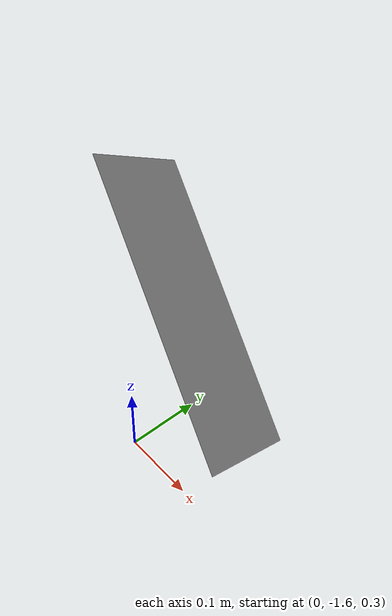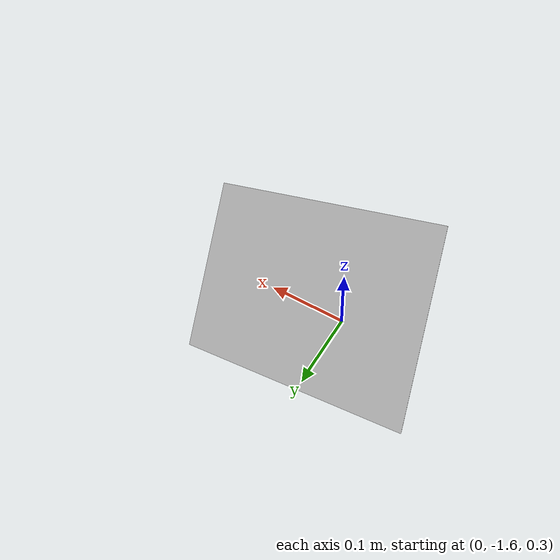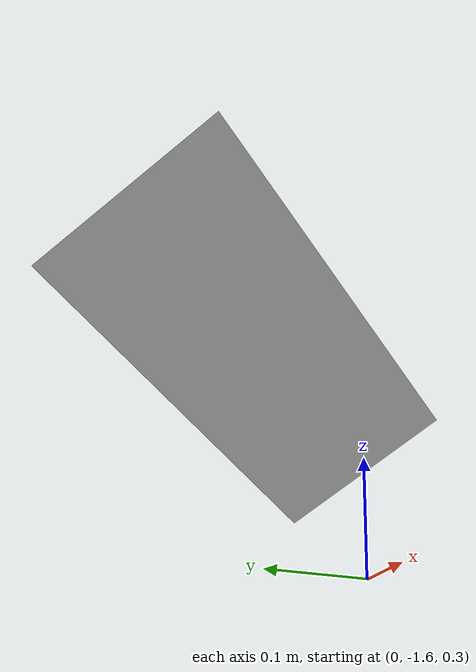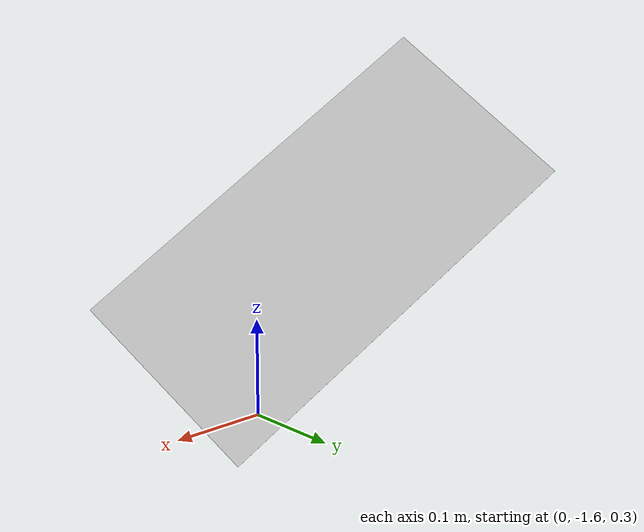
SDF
<?xml version="1.0" ?>
<sdf version="1.6">
  <model name="textured_shapes">
    <pose>0 0 0.5 0 0 0</pose>
    <link name="box">
      <pose>0 -1.5 0 0 0 0</pose>
      <collision name="collision">
        <geometry>
          <box>
            <size>1 1 1</size>
          </box>
        </geometry>
      </collision>
      <visual name="visual">
        <geometry>
          <plane>
            <normal>1 1 1</normal>
            <size>0.4 0.2</size>
          </plane>
        </geometry>
        <material>
          <script>
            <uri>model://textured_shapes/materials/scripts</uri>
            <uri>model://textured_shapes/materials/textures</uri>
            <name>TexturedShape/Squares</name>
          </script>
        </material>
      </visual>
    </link>
  </model>
</sdf>
